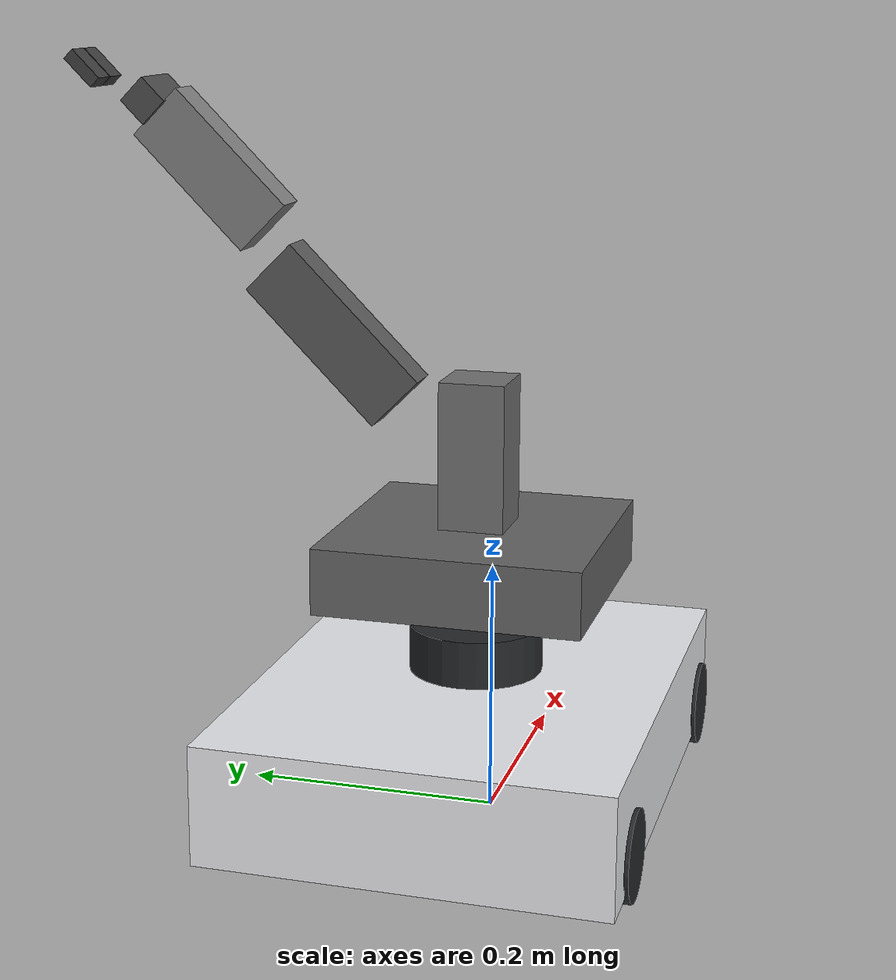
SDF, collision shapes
<?xml version="1.0" ?>
<sdf version="1.7">
  <model name='rover_with_arm'>
    <pose>0 0 0.033 0 0 0</pose>

    <!-- Rover Base Components -->
    <link name='base_footprint'>
      <inertial>
        <pose>0 0 0 0 0 0</pose>
        <mass>0.1</mass>
        <inertia>
          <ixx>0.001</ixx>
          <ixy>0</ixy>
          <ixz>0</ixz>
          <iyy>0.001</iyy>
          <iyz>0</iyz>
          <izz>0.001</izz>
        </inertia>
      </inertial>
    </link>

    <link name='base_link'>
      <pose relative_to='base_footprint'>0 0 0.01 0 0 0</pose>
      <inertial>
        <pose>0 0 0 0 0 0</pose>
        <mass>8.0</mass>
        <inertia>
          <ixx>0.1</ixx>
          <ixy>0</ixy>
          <ixz>0</ixz>
          <iyy>0.1</iyy>
          <iyz>0</iyz>
          <izz>0.1</izz>
        </inertia>
      </inertial>
      <collision name='base_collision'>
        <geometry>
          <box>
            <size>0.400 0.300 0.089</size>
          </box>
        </geometry>
        <pose>-0.064 0 0.048 0 0 0</pose>
      </collision>
      <visual name='base_visual'>
        <geometry>
          <box>
            <size>0.400 0.300 0.089</size>
          </box>
        </geometry>
        <pose>-0.064 0 0.048 0 0 0</pose>
        <material>
          <ambient>0.921568627 0.925490196 0.941176471 1</ambient>
          <diffuse>0.921568627 0.925490196 0.941176471 1</diffuse>
          <specular>0.1 0.1 0.1 1</specular>
        </material>
      </visual>
    </link>

    <joint name='base_joint' type='fixed'>
      <parent>base_footprint</parent>
      <child>base_link</child>
    </joint>

    <link name="imu_link">
      <sensor name="imu" type="imu">
        <always_on>1</always_on>
        <update_rate>200</update_rate>
        <visualize>true</visualize>
        <topic>imu</topic>
        <ignition_frame_id>imu_link</ignition_frame_id>
        <imu>
          <angular_velocity>
            <x>
              <noise type="gaussian">
                <mean>0.0</mean>
                <stddev>2e-4</stddev>
              </noise>
            </x>
            <y>
              <noise type="gaussian">
                <mean>0.0</mean>
                <stddev>2e-4</stddev>
              </noise>
            </y>
            <z>
              <noise type="gaussian">
                <mean>0.0</mean>
                <stddev>2e-4</stddev>
              </noise>
            </z>
          </angular_velocity>
          <linear_acceleration>
            <x>
              <noise type="gaussian">
                <mean>0.0</mean>
                <stddev>1.7e-2</stddev>
              </noise>
            </x>
            <y>
              <noise type="gaussian">
                <mean>0.0</mean>
                <stddev>1.7e-2</stddev>
              </noise>
            </y>
            <z>
              <noise type="gaussian">
                <mean>0.0</mean>
                <stddev>1.7e-2</stddev>
              </noise>
            </z>
          </linear_acceleration>
        </imu>
      </sensor>
    </link>
    <joint name="imu_joint" type="fixed">
      <pose>-0.032 0 0.068 0 0 0</pose>
      <parent>base_link</parent>
      <child>imu_link</child>
    </joint>

    <link name="base_scan">
      <inertial>
        <pose>-0.052 0 0.111 0 0 0</pose>
        <inertia>
          <ixx>0.001</ixx>
          <ixy>0</ixy>
          <ixz>0</ixz>
          <iyy>0.001</iyy>
          <iyz>0</iyz>
          <izz>0.001</izz>
        </inertia>
        <mass>0.114</mass>
      </inertial>
      <collision name="lidar_sensor_collision">
        <pose>-0.052 0 0.111 0 0 0</pose>
        <geometry>
          <cylinder>
            <radius>0.0508</radius>
            <length>0.055</length>
          </cylinder>
        </geometry>
      </collision>
      <visual name="lidar_sensor_visual">
        <pose>-0.064 0 0.121 0 0 0</pose>
        <geometry>
          <cylinder>
            <radius>0.0508</radius>
            <length>0.055</length>
          </cylinder>
        </geometry>
        <material>
          <diffuse>0.145098039 0.156862745 0.164705882 1</diffuse>
          <ambient>0.145098039 0.156862745 0.164705882 1</ambient>
          <specular>0.145098039 0.156862745 0.164705882 1</specular>
        </material>
      </visual>
      <sensor name="gpu_lidar" type="gpu_lidar">
        <pose>-0.064 0 0.121 0 0 0</pose>
        <topic>scan</topic>
        <ignition_frame_id>base_scan</ignition_frame_id>
        <update_rate>5</update_rate>
        <visualize>true</visualize>  <!-- Make sure visualization is enabled -->
        <ray>
          <scan>
            <horizontal>
              <samples>360</samples>
              <resolution>1</resolution>
              <min_angle>0</min_angle>
              <max_angle>6.28</max_angle>
            </horizontal>
          </scan>
          <range>
            <min>0.120000</min>
            <max>20.0</max>
            <resolution>0.015000</resolution>
          </range>
          <noise>
            <type>gaussian</type>
            <mean>0.0</mean>
            <stddev>0.01</stddev>
          </noise>
        </ray>
        <always_on>true</always_on>
        <visualize>1</visualize>
      </sensor>
    </link>
    <joint name="lidar_joint" type="fixed">
      <pose>-0.064 0 0.121 0 0 0</pose>
      <parent>base_link</parent>
      <child>base_scan</child>
    </joint>

    <!-- Four Wheels -->
    <link name='wheel_front_left_link'>
      <pose relative_to='base_link'>0.1 0.144 0.023 -1.57 0 0</pose>
      <inertial>
        <mass>0.5</mass>
        <inertia>
          <ixx>0.001</ixx>
          <ixy>0</ixy>
          <ixz>0</ixz>
          <iyy>0.001</iyy>
          <iyz>0</iyz>
          <izz>0.001</izz>
        </inertia>
      </inertial>
      <collision name='wheel_front_left_collision'>
        <geometry>
          <cylinder>
            <radius>0.033</radius>
            <length>0.018</length>
          </cylinder>
        </geometry>
        <surface>
          <friction>
            <ode>
              <mu>1.0</mu>
              <mu2>1.0</mu2>
            </ode>
          </friction>
        </surface>
      </collision>
      <visual name='wheel_front_left_visual'>
        <geometry>
          <cylinder>
            <radius>0.033</radius>
            <length>0.018</length>
          </cylinder>
        </geometry>
        <material>
          <ambient>0.145098039 0.156862745 0.164705882 1</ambient>
          <diffuse>0.145098039 0.156862745 0.164705882 1</diffuse>
          <specular>0.1 0.1 0.1 1</specular>
        </material>
      </visual>
    </link>

    <joint name='wheel_front_left_joint' type='revolute'>
      <parent>base_link</parent>
      <child>wheel_front_left_link</child>
      <axis>
        <xyz>0 0 1</xyz>
        <limit>
          <lower>-1e+16</lower>
          <upper>1e+16</upper>
        </limit>
      </axis>
    </joint>

    <link name='wheel_front_right_link'>
      <pose relative_to='base_link'>0.1 -0.144 0.023 -1.57 0 0</pose>
      <inertial>
        <mass>0.5</mass>
        <inertia>
          <ixx>0.001</ixx>
          <ixy>0</ixy>
          <ixz>0</ixz>
          <iyy>0.001</iyy>
          <iyz>0</iyz>
          <izz>0.001</izz>
        </inertia>
      </inertial>
      <collision name='wheel_front_right_collision'>
        <geometry>
          <cylinder>
            <radius>0.033</radius>
            <length>0.018</length>
          </cylinder>
        </geometry>
        <surface>
          <friction>
            <ode>
              <mu>1.0</mu>
              <mu2>1.0</mu2>
            </ode>
          </friction>
        </surface>
      </collision>
      <visual name='wheel_front_right_visual'>
        <geometry>
          <cylinder>
            <radius>0.033</radius>
            <length>0.018</length>
          </cylinder>
        </geometry>
        <material>
          <ambient>0.145098039 0.156862745 0.164705882 1</ambient>
          <diffuse>0.145098039 0.156862745 0.164705882 1</diffuse>
          <specular>0.1 0.1 0.1 1</specular>
        </material>
      </visual>
    </link>

    <joint name='wheel_front_right_joint' type='revolute'>
      <parent>base_link</parent>
      <child>wheel_front_right_link</child>
      <axis>
        <xyz>0 0 1</xyz>
        <limit>
          <lower>-1e+16</lower>
          <upper>1e+16</upper>
        </limit>
      </axis>
    </joint>

    <link name='wheel_rear_left_link'>
      <pose relative_to='base_link'>-0.2 0.144 0.023 -1.57 0 0</pose>
      <inertial>
        <mass>0.5</mass>
        <inertia>
          <ixx>0.001</ixx>
          <ixy>0</ixy>
          <ixz>0</ixz>
          <iyy>0.001</iyy>
          <iyz>0</iyz>
          <izz>0.001</izz>
        </inertia>
      </inertial>
      <collision name='wheel_rear_left_collision'>
        <geometry>
          <cylinder>
            <radius>0.033</radius>
            <length>0.018</length>
          </cylinder>
        </geometry>
        <surface>
          <friction>
            <ode>
              <mu>1.0</mu>
              <mu2>1.0</mu2>
            </ode>
          </friction>
        </surface>
      </collision>
      <visual name='wheel_rear_left_visual'>
        <geometry>
          <cylinder>
            <radius>0.033</radius>
            <length>0.018</length>
          </cylinder>
        </geometry>
        <material>
          <ambient>0.145098039 0.156862745 0.164705882 1</ambient>
          <diffuse>0.145098039 0.156862745 0.164705882 1</diffuse>
          <specular>0.1 0.1 0.1 1</specular>
        </material>
      </visual>
    </link>

    <joint name='wheel_rear_left_joint' type='revolute'>
      <parent>base_link</parent>
      <child>wheel_rear_left_link</child>
      <axis>
        <xyz>0 0 1</xyz>
        <limit>
          <lower>-1e+16</lower>
          <upper>1e+16</upper>
        </limit>
      </axis>
    </joint>

    <link name='wheel_rear_right_link'>
      <pose relative_to='base_link'>-0.2 -0.144 0.023 -1.57 0 0</pose>
      <inertial>
        <mass>0.5</mass>
        <inertia>
          <ixx>0.001</ixx>
          <ixy>0</ixy>
          <ixz>0</ixz>
          <iyy>0.001</iyy>
          <iyz>0</iyz>
          <izz>0.001</izz>
        </inertia>
      </inertial>
      <collision name='wheel_rear_right_collision'>
        <geometry>
          <cylinder>
            <radius>0.033</radius>
            <length>0.018</length>
          </cylinder>
        </geometry>
        <surface>
          <friction>
            <ode>
              <mu>1.0</mu>
              <mu2>1.0</mu2>
            </ode>
          </friction>
        </surface>
      </collision>
      <visual name='wheel_rear_right_visual'>
        <geometry>
          <cylinder>
            <radius>0.033</radius>
            <length>0.018</length>
          </cylinder>
        </geometry>
        <material>
          <ambient>0.145098039 0.156862745 0.164705882 1</ambient>
          <diffuse>0.145098039 0.156862745 0.164705882 1</diffuse>
          <specular>0.1 0.1 0.1 1</specular>
        </material>
      </visual>
    </link>

    <joint name='wheel_rear_right_joint' type='revolute'>
      <parent>base_link</parent>
      <child>wheel_rear_right_link</child>
      <axis>
        <xyz>0 0 1</xyz>
        <limit>
          <lower>-1e+16</lower>
          <upper>1e+16</upper>
        </limit>
      </axis>
    </joint>

    <link name="camera_link"/>
    <joint name="camera_joint" type="fixed">
      <parent>base_link</parent>
      <child>camera_link</child>
      <pose>0.064 -0.065 0.094 0 0 0</pose>
      <axis>
        <xyz>0 0 1</xyz>
      </axis>
    </joint>

    <link name="camera_rgb_frame">
      <inertial>
        <pose>0.069 -0.047 0.107 0 0 0</pose>
        <inertia>
          <ixx>0.001</ixx>
          <ixy>0.000</ixy>
          <ixz>0.000</ixz>
          <iyy>0.001</iyy>
          <iyz>0.000</iyz>
          <izz>0.001</izz>
        </inertia>
        <mass>0.035</mass>
      </inertial>
      <pose>0.069 -0.047 0.107 0 0 0</pose>
      <sensor name="camera" type="camera">
        <always_on>true</always_on>
        <visualize>true</visualize>
        <update_rate>30</update_rate>
        <camera_info_topic>/camera/rgb/camera_info</camera_info_topic>
        <topic>/camera/rgb/image_raw</topic>
        <ignition_frame_id>camera_rgb_frame</ignition_frame_id>
        <camera name="intel_realsense_r200">
          <horizontal_fov>1.02974</horizontal_fov>
          <image>
            <width>1920</width>
            <height>1080</height>
            <format>R8G8B8</format>
          </image>
          <clip>
            <near>0.02</near>
            <far>300</far>
          </clip>
          <noise>
            <type>gaussian</type>
            <mean>0.0</mean>
            <stddev>0.007</stddev>
          </noise>
        </camera>
      </sensor>
    </link>
    <joint name="camera_rgb_joint" type="fixed">
      <parent>camera_link</parent>
      <child>camera_rgb_frame</child>
      <pose>0.005 0.018 0.013 0 0 0</pose>
      <axis>
        <xyz>0 0 1</xyz>
      </axis>
    </joint>

    <!-- Arm Mounting Bracket/Base -->
    <link name='arm_mount'>
      <pose relative_to='base_link'>-0.048 0 0.17 0 0 0</pose>
      <inertial>
        <mass>1.0</mass>
        <inertia>
          <ixx>0.001</ixx>
          <ixy>0</ixy>
          <ixz>0</ixz>
          <iyy>0.001</iyy>
          <iyz>0</iyz>
          <izz>0.001</izz>
        </inertia>
      </inertial>
      <collision name='arm_mount_collision'>
        <geometry>
          <box>
            <size>0.15 0.15 0.01</size>
          </box>
        </geometry>
      </collision>
      <visual name='arm_mount_visual'>
        <geometry>
          <box>
            <size>0.15 0.15 0.01</size>
          </box>
        </geometry>
        <material>
          <ambient>0.2 0.2 0.2 1</ambient>
          <diffuse>0.2 0.2 0.2 1</diffuse>
          <specular>0.1 0.1 0.1 1</specular>
        </material>
      </visual>
    </link>

    <joint name='base_to_arm_mount' type='fixed'>
      <parent>base_link</parent>
      <child>arm_mount</child>
    </joint>

    <!-- 5-DOF Arm Components -->
    <link name='base_link_arm'>
      <pose relative_to='arm_mount'>0 0 0.01 0 0 0</pose>
      <inertial>
        <pose>0 0 0 0 -0 0</pose>
        <mass>10</mass>
        <inertia>
          <ixx>0.001</ixx>
          <ixy>0</ixy>
          <ixz>0</ixz>
          <iyy>0.001</iyy>
          <iyz>0</iyz>
          <izz>0.001</izz>
        </inertia>
      </inertial>
      <collision name='base_link_collision'>
        <pose>0 0 0 0 -0 0</pose>
        <geometry>
          <box>
            <size>0.2 0.2 0.05</size>
          </box>
        </geometry>
        <surface>
          <contact>
            <ode/>
          </contact>
          <friction>
            <ode/>
          </friction>
        </surface>
      </collision>
      <visual name='base_link_visual'>
        <pose>0 0 0 0 -0 0</pose>
        <geometry>
          <mesh>
            <scale>1 1 1</scale>
            <uri>model://arm_ign/meshes/base.stl</uri>
          </mesh>
        </geometry>
        <material>
          <ambient>0.3 0.3 0.3 1</ambient>
          <diffuse>0.4 0.4 0.4 1</diffuse>
          <specular>0.6 0.6 0.6 1</specular>
        </material>
      </visual>
    </link>

    <joint name='arm_mount_to_base_link_arm' type='fixed'>
      <parent>arm_mount</parent>
      <child>base_link_arm</child>
    </joint>

    <joint name='base_to_L1' type='revolute'>
      <pose relative_to='base_link_arm'>0 0 0.062 0 -0 0</pose>
      <parent>base_link_arm</parent>
      <child>l1_link</child>
      <axis>
        <xyz>0 0 1</xyz>
        <limit>
          <lower>-3.14</lower>
          <upper>3.14</upper>
          <effort>1000</effort>
          <velocity>0.5</velocity>
        </limit>
        <dynamics>
          <damping>0.5</damping>
          <friction>0.1</friction>
          <spring_reference>0</spring_reference>
          <spring_stiffness>0</spring_stiffness>
        </dynamics>
      </axis>
    </joint>

    <link name='l1_link'>
      <pose relative_to='base_to_L1'>0 0 0 0 -0 0</pose>
      <inertial>
        <pose>0 0 0 0 -0 0</pose>
        <mass>100</mass>
        <inertia>
          <ixx>0.001</ixx>
          <ixy>0</ixy>
          <ixz>0</ixz>
          <iyy>0.001</iyy>
          <iyz>0</iyz>
          <izz>0.001</izz>
        </inertia>
      </inertial>
      <collision name='l1_link_collision'>
        <pose>0 0 0 0 -0 0</pose>
        <geometry>
          <box>
            <size>0.05 0.05 0.15</size>
          </box>
        </geometry>
      </collision>
      <visual name='l1_link_visual'>
        <pose>0 0 -0.062 0 -0 0</pose>
        <geometry>
          <mesh>
            <scale>1 1 1</scale>
            <uri>model://arm_ign/meshes/L1.stl</uri>
          </mesh>
        </geometry>
        <material>
          <ambient>0.35 0.35 0.35 1</ambient>
          <diffuse>0.45 0.45 0.45 1</diffuse>
          <specular>0.5 0.5 0.5 1</specular>
        </material>
      </visual>
    </link>

    <joint name='L1_to_L2' type='revolute'>
      <pose relative_to='l1_link'>0 0.041051 0.0534 0 -0 0</pose>
      <parent>l1_link</parent>
      <child>l2_link</child>
      <axis>
        <xyz>1 0 0</xyz>
        <limit>
          <lower>-2.57</lower>
          <upper>2</upper>
          <effort>1000</effort>
          <velocity>0.5</velocity>
        </limit>
        <dynamics>
          <damping>0.5</damping>
          <friction>0.1</friction>
          <spring_reference>0</spring_reference>
          <spring_stiffness>0</spring_stiffness>
        </dynamics>
      </axis>
    </joint>

    <link name='l2_link'>
      <pose relative_to='L1_to_L2'>0 0 0 0 -0 0</pose>
      <inertial>
        <pose>0 0 0 0 -0 0</pose>
        <mass>1</mass>
        <inertia>
          <ixx>0.001</ixx>
          <ixy>0</ixy>
          <ixz>0</ixz>
          <iyy>0.001</iyy>
          <iyz>0</iyz>
          <izz>0.001</izz>
        </inertia>
      </inertial>
      <collision name='l2_link_collision'>
        <pose>0 0.07 0.05 -0.785 0 0</pose>
        <geometry>
          <box>
            <size>0.03 0.05 0.14</size>
          </box>
        </geometry>
      </collision>
      <visual name='l2_link_visual'>
        <pose>0 -0.041051 -0.11574 0 -0 0</pose>
        <geometry>
          <mesh>
            <scale>1 1 1</scale>
            <uri>model://arm_ign/meshes/L2.stl</uri>
          </mesh>
        </geometry>
        <material>
          <ambient>0.25 0.25 0.25 1</ambient>
          <diffuse>0.35 0.35 0.35 1</diffuse>
          <specular>0.7 0.7 0.7 1</specular>
        </material>
      </visual>
    </link>

    <joint name='L2_to_L3' type='revolute'>
      <pose relative_to='l2_link'>0 0.119401 0.119401 0 -0 0</pose>
      <parent>l2_link</parent>
      <child>l3_link</child>
      <axis>
        <xyz>1 0 0</xyz>
        <limit>
          <lower>-2.7</lower>
          <upper>2.7</upper>
          <effort>1000</effort>
          <velocity>0.5</velocity>
        </limit>
        <dynamics>
          <damping>0.5</damping>
          <friction>0.1</friction>
          <spring_reference>0</spring_reference>
          <spring_stiffness>0</spring_stiffness>
        </dynamics>
      </axis>
    </joint>

    <link name='l3_link'>
      <pose relative_to='L2_to_L3'>0 0 0 0 -0 0</pose>
      <inertial>
        <pose>0 0 0 0 -0 0</pose>
        <mass>1</mass>
        <inertia>
          <ixx>0.001</ixx>
          <ixy>0</ixy>
          <ixz>0</ixz>
          <iyy>0.001</iyy>
          <iyz>0</iyz>
          <izz>0.001</izz>
        </inertia>
      </inertial>
      <collision name='l3_link_collision'>
        <pose>0.01 0.05 0.05 -0.785 0 0</pose>
        <geometry>
          <box>
            <size>0.03 0.05 0.12</size>
          </box>
        </geometry>
      </collision>
      <visual name='l3_link_visual'>
        <pose>0 -0.160452 -0.235141 0 -0 0</pose>
        <geometry>
          <mesh>
            <scale>1 1 1</scale>
            <uri>model://arm_ign/meshes/L3.stl</uri>
          </mesh>
        </geometry>
        <material>
          <ambient>0.4 0.4 0.4 1</ambient>
          <diffuse>0.5 0.5 0.5 1</diffuse>
          <specular>0.6 0.6 0.6 1</specular>
        </material>
      </visual>
    </link>

    <joint name='L3_to_L4' type='revolute'>
      <pose relative_to='l3_link'>0 0.090485 0.090455 0 -0 0</pose>
      <parent>l3_link</parent>
      <child>l4_link</child>
      <axis>
        <xyz>1 0 0</xyz>
        <limit>
          <lower>-2.1</lower>
          <upper>2.1</upper>
          <effort>1000</effort>
          <velocity>0.5</velocity>
        </limit>
        <dynamics>
          <damping>0.5</damping>
          <friction>0.1</friction>
          <spring_reference>0</spring_reference>
          <spring_stiffness>0</spring_stiffness>
        </dynamics>
      </axis>
    </joint>

    <link name='l4_link'>
      <pose relative_to='L3_to_L4'>0 0 0 0 -0 0</pose>
      <inertial>
        <pose>0 0 0 0 -0 0</pose>
        <mass>1</mass>
        <inertia>
          <ixx>0.001</ixx>
          <ixy>0</ixy>
          <ixz>0</ixz>
          <iyy>0.001</iyy>
          <iyz>0</iyz>
          <izz>0.001</izz>
        </inertia>
      </inertial>
      <collision name='l4_link_collision'>
        <pose>0.016 0.01 0.01 -0.785 0 0</pose>
        <geometry>
          <box>
            <size>0.05 0.025 0.025</size>
          </box>
        </geometry>
      </collision>
      <visual name='l4_link_visual'>
        <pose>0 -0.250907 -0.325596 0 -0 0</pose>
        <geometry>
          <mesh>
            <scale>1 1 1</scale>
            <uri>model://arm_ign/meshes/L4.stl</uri>
          </mesh>
        </geometry>
        <material>
          <ambient>0.2 0.2 0.2 1</ambient>
          <diffuse>0.3 0.3 0.3 1</diffuse>
          <specular>0.8 0.8 0.8 1</specular>
        </material>
      </visual>
    </link>

    <joint name='L4_to_L5_1_A' type='revolute'>
      <pose relative_to='l4_link'>0.003489 0.0601 0.033148 0.785 -0 0</pose>
      <parent>l4_link</parent>
      <child>l5_1_A_link</child>
      <axis>
        <xyz>0 0 1</xyz>
        <limit>
          <lower>-1.57</lower>
          <upper>0</upper>
          <effort>1000</effort>
          <velocity>0.5</velocity>
        </limit>
        <dynamics>
          <damping>0.5</damping>
          <friction>0.1</friction>
          <spring_reference>0</spring_reference>
          <spring_stiffness>0</spring_stiffness>
        </dynamics>
      </axis>
    </joint>

    <link name='l5_1_A_link'>
      <pose relative_to='L4_to_L5_1_A'>0 0 0 0 -0 0</pose>
      <inertial>
        <pose>0 0 0 0 -0 0</pose>
        <mass>1</mass>
        <inertia>
          <ixx>0.001</ixx>
          <ixy>0</ixy>
          <ixz>0</ixz>
          <iyy>0.001</iyy>
          <iyz>0</iyz>
          <izz>0.001</izz>
        </inertia>
      </inertial>
      <collision name='l5_1_A_link_collision'>
        <pose>0 0 0 0 -0 0</pose>
        <geometry>
          <box>
            <size>0.02 0.03 0.01</size>
          </box>
        </geometry>
        <surface>
          <contact>
            <ode/>
          </contact>
          <friction>
            <ode/>
          </friction>
        </surface>
      </collision>
      <visual name='l5_1_A_link_visual'>
        <pose>-0.003489 -0.311007 -0.358744 0 -0 0</pose>
        <geometry>
          <mesh>
            <scale>1 1 1</scale>
            <uri>model://arm_ign/meshes/L5_1_A.stl</uri>
          </mesh>
        </geometry>
        <material>
          <ambient>0.15 0.15 0.15 1</ambient>
          <diffuse>0.25 0.25 0.25 1</diffuse>
          <specular>0.9 0.9 0.9 1</specular>
        </material>
      </visual>
    </link>

    <joint name='L4_to_L5_1_B' type='revolute'>
      <pose relative_to='l4_link'>0.024489 0.0601 0.033148 0.785 -0 0</pose>
      <parent>l4_link</parent>
      <child>l5_1_B_link</child>
      <axis>
        <xyz>0 0 1</xyz>
        <limit>
          <lower>-1.57</lower>
          <upper>1.57</upper>
          <effort>1000</effort>
          <velocity>0.5</velocity>
        </limit>
        <dynamics>
          <damping>0.5</damping>
          <friction>0.1</friction>
          <spring_reference>0</spring_reference>
          <spring_stiffness>0</spring_stiffness>
        </dynamics>
      </axis>
    </joint>

    <link name='l5_1_B_link'>
      <pose relative_to='L4_to_L5_1_B'>0 0 0 0 -0 0</pose>
      <inertial>
        <pose>0 0 0 0 -0 0</pose>
        <mass>1</mass>
        <inertia>
          <ixx>0.001</ixx>
          <ixy>0</ixy>
          <ixz>0</ixz>
          <iyy>0.001</iyy>
          <iyz>0</iyz>
          <izz>0.001</izz>
        </inertia>
      </inertial>
      <collision name='l5_1_B_link_collision'>
        <pose>0 0 0 0 -0 0</pose>
        <geometry>
          <box>
            <size>0.02 0.03 0.01</size>
          </box>
        </geometry>
      </collision>
      <visual name='l5_1_B_link_visual'>
        <pose>-0.024489 -0.311007 -0.358744 0 -0 0</pose>
        <geometry>
          <mesh>
            <scale>1 1 1</scale>
            <uri>model://arm_ign/meshes/L5_1_B.stl</uri>
          </mesh>
        </geometry>
        <material>
          <ambient>0.15 0.15 0.15 1</ambient>
          <diffuse>0.25 0.25 0.25 1</diffuse>
          <specular>0.9 0.9 0.9 1</specular>
        </material>
      </visual>
    </link>

    <!-- Global odometer -->

    <plugin
      filename="ignition-gazebo-odometry-publisher-system"
      name="ignition::gazebo::systems::OdometryPublisher">
      <odom_publish_frequency>50</odom_publish_frequency>
      <odom_topic>/odom</odom_topic>
      <odom_frame>odom</odom_frame>
      <robot_base_frame>base_footprint</robot_base_frame>
      <tf_topic>/odom/tf</tf_topic>
    </plugin>

    <!-- Wheel control plugins -->
    <plugin name='ignition::gazebo::systems::DiffDrive' filename='libignition-gazebo-diff-drive-system.so'>
        <left_joint>wheel_rear_left_joint</left_joint>
        <right_joint>wheel_rear_right_joint</right_joint>
        <left_joint>wheel_front_left_joint</left_joint>
        <right_joint>wheel_front_right_joint</right_joint>
        <wheel_separation>0.288</wheel_separation>
        <wheel_radius>0.033</wheel_radius>
        <topic>/cmd_vel</topic>
    </plugin>

    <!-- Joint State Publisher Plugin -->
    <plugin filename="libignition-gazebo-joint-state-publisher-system.so"
      name="ignition::gazebo::systems::JointStatePublisher">
      <topic>joint_states</topic>
    </plugin>

    <!-- Joint Position Controllers for the arm -->
    <plugin name='ignition::gazebo::systems::JointPositionController' filename='libignition-gazebo-joint-position-controller-system.so'>
      <joint_name>base_to_L1</joint_name>
      <topic>/cmd_pos_joint1</topic>
      <p_gain>20</p_gain>
      <i_gain>0.5</i_gain>
      <d_gain>2.0</d_gain>
      <i_max>10</i_max>
      <i_min>-10</i_min>
      <cmd_max>1000</cmd_max>
      <cmd_min>-1000</cmd_min>
    </plugin>

    <plugin name='ignition::gazebo::systems::JointPositionController' filename='libignition-gazebo-joint-position-controller-system.so'>
      <joint_name>L1_to_L2</joint_name>
      <topic>/cmd_pos_joint2</topic>
      <p_gain>40</p_gain>
      <i_gain>0.9</i_gain>
      <d_gain>3.5</d_gain>
      <i_max>10</i_max>
      <i_min>-10</i_min>
      <cmd_max>1000</cmd_max>
      <cmd_min>-1000</cmd_min>
    </plugin>

    <plugin name='ignition::gazebo::systems::JointPositionController' filename='libignition-gazebo-joint-position-controller-system.so'>
      <joint_name>L2_to_L3</joint_name>
      <topic>/cmd_pos_joint3</topic>
      <p_gain>30</p_gain>
      <i_gain>0.5</i_gain>
      <d_gain>2.0</d_gain>
      <i_max>10</i_max>
      <i_min>-10</i_min>
      <cmd_max>1000</cmd_max>
      <cmd_min>-1000</cmd_min>
    </plugin>

    <plugin name='ignition::gazebo::systems::JointPositionController' filename='libignition-gazebo-joint-position-controller-system.so'>
      <joint_name>L3_to_L4</joint_name>
      <topic>/cmd_pos_joint4</topic>
      <p_gain>20</p_gain>
      <i_gain>0.5</i_gain>
      <d_gain>2.0</d_gain>
      <i_max>10</i_max>
      <i_min>-10</i_min>
      <cmd_max>1000</cmd_max>
      <cmd_min>-1000</cmd_min>
    </plugin>

    <plugin name='ignition::gazebo::systems::JointPositionController' filename='libignition-gazebo-joint-position-controller-system.so'>
      <joint_name>L4_to_L5_1_A</joint_name>
      <topic>/cmd_pos_joint5</topic>
      <p_gain>20</p_gain>
      <i_gain>0.5</i_gain>
      <d_gain>2.0</d_gain>
      <i_max>10</i_max>
      <i_min>-10</i_min>
      <cmd_max>1000</cmd_max>
      <cmd_min>-1000</cmd_min>
    </plugin>

    <plugin name='ignition::gazebo::systems::JointPositionController' filename='libignition-gazebo-joint-position-controller-system.so'>
      <joint_name>L4_to_L5_1_B</joint_name>
      <topic>/cmd_pos_joint6</topic>
      <p_gain>20</p_gain>
      <i_gain>0.5</i_gain>
      <d_gain>2.0</d_gain>
      <i_max>10</i_max>
      <i_min>-10</i_min>
      <cmd_max>1000</cmd_max>
      <cmd_min>-1000</cmd_min>
    </plugin>
  </model>
</sdf>
